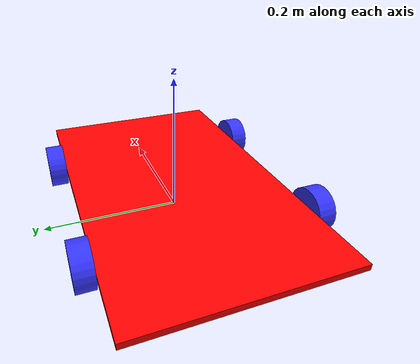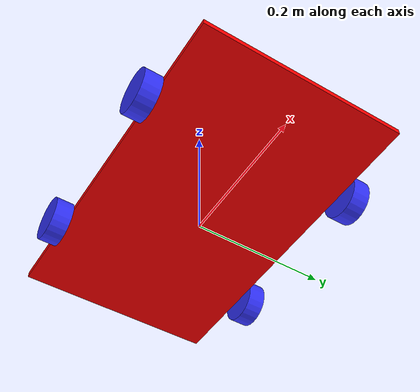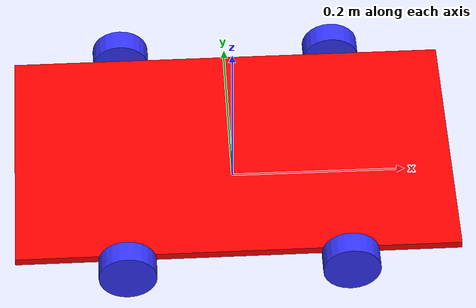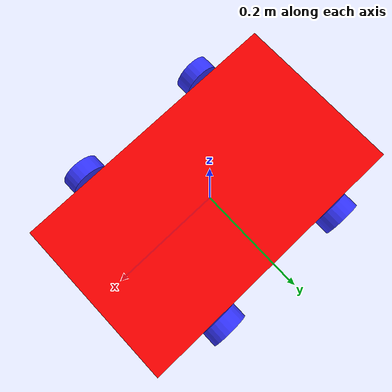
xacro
<?xml version="1.0"?>
<robot xmlns:xacro="http://www.ros.org/wiki/xacro" >

    <xacro:include filename="inertial_macros.xacro"/>

    <xacro:property name="base_length" value="0.5"/>
    <xacro:property name="base_width" value="0.3"/>
    <xacro:property name="base_height" value="0.009"/>
    <xacro:property name="wheel_radius" value="0.0325"/>
    <xacro:property name="wheel_length" value="0.026"/>
    <xacro:property name="wheel_offset_x" value="0.22"/>
    <xacro:property name="wheel_offset_y" value="0.312"/>
    <xacro:property name="wheel_offset_z" value="0.0125"/>

    <material name="white">
        <color rgba="1 1 1 1" />
    </material>

    <material name="orange">
        <color rgba="1 0.3 0.1 1"/>
    </material>

    <material name="blue">
        <color rgba="0.2 0.2 1 1"/>
    </material>

    <material name="black">
        <color rgba="0 0 0 1"/>
    </material>

    <material name="red">
        <color rgba="1 0 0 1"/>
    </material>

    <!-- BASE_FOOTPRINT LINK -->
    <link name="base_footprint">
    </link>

    <!-- BASE LINK -->

    <link name="base_link">
        <visual>
            <geometry>
                <box size="${base_length} ${base_width} ${base_height}" />
            </geometry>
            <origin xyz="0 0 ${base_height / 2.0}" rpy="0 0 0" />
            <material name="red" />
        </visual>
        <collision>
            <geometry>
                <box size="${base_length} ${base_width} ${base_height}" />
            </geometry>
            <origin xyz="0 0 ${base_height / 2.0}" rpy="0 0 0" />
        </collision>
        <xacro:box_inertia m="5.0" l="${2*base_length}" w="${2*base_width}" h="${2*base_height}"
                           xyz="0 0 ${base_height / 2.0}" rpy="0 0 0" />
    </link>

    <gazebo reference="base_link">
        <material>Gazebo/Orange</material>
    </gazebo>

    <joint name="base_joint" type="fixed">
        <parent link="base_footprint" />
        <child link="base_link" />
        <origin xyz="0 0 ${wheel_radius}" rpy="0 0 0"/>
    </joint>

    <!-- wheel LINK -->

    <xacro:macro name="wheel" params="prefix">
        <link name="${prefix}_wheel">
            <visual>
                <geometry>
                    <cylinder radius="${wheel_radius}" length="${wheel_length}" />
                </geometry>
                <origin xyz="0 0 0" rpy="${pi / 2.0} 0 0" />
                <material name="blue" />
            </visual>
            <collision>
                <geometry>
                    <cylinder radius="${wheel_radius}" length="${wheel_length}" />
                </geometry>
                <origin xyz="0 0 0" rpy="${pi / 2.0} 0 0" />
            </collision>
            <xacro:cylinder_inertia m="1.0"  r="${wheel_radius}" h="${wheel_length}"
                                        xyz="0 0 0" rpy="${pi / 2.0} 0 0"/>
        </link>
    </xacro:macro>

    <!-- FRONT_LEFT WHEEL LINK -->
    <xacro:wheel prefix="front_left" />

    <gazebo reference="front_left_wheel">
        <material>Gazebo/Blue</material>
    </gazebo>

    <joint name="front_left_wheel_joint" type="continuous">
        <parent link="base_link"/>
        <child link="front_left_wheel"/>
        <origin xyz="${base_length / 4.0} ${(base_width + wheel_length) / 2.0} 0" rpy="0 0 0" />
        <axis xyz="0 1 0"/>
    </joint>

        <!-- Transmission for rear_left_wheel -->
    <transmission name="front_left_wheel_trans">
    <type>transmission_interface/SimpleTransmission</type>
    <joint name="front_left_wheel_joint">
        <hardwareInterface>hardware_interface/VelocityJointInterface</hardwareInterface>
    </joint>
    <actuator name="front_left_motor">
        <hardwareInterface>hardware_interface/VelocityJointInterface</hardwareInterface>
        <mechanicalReduction>1</mechanicalReduction>
    </actuator>
    </transmission>

    <!-- Gazebo plugin interface -->
    <gazebo>
    <plugin name="front_left_wheel_controller" filename="libgazebo_ros_joint_control.so"/>
    </gazebo>

    <!-- FRONT_RIGHT WHEEL LINK -->
    <xacro:wheel prefix="front_right" />

    <gazebo reference="front_right_wheel">
        <material>Gazebo/Blue</material>
    </gazebo>

    <joint name="front_right_wheel_joint" type="continuous">
        <parent link="base_link"/>
        <child link="front_right_wheel"/>
        <origin xyz="${base_length / 4.0} ${-(base_width + wheel_length) / 2.0} 0" rpy="0 0 0" />
        <axis xyz="0 1 0"/>
    </joint>

        <!-- Transmission for rear_left_wheel -->
    <transmission name="front_right_wheel_trans">
    <type>transmission_interface/SimpleTransmission</type>
    <joint name="front_right_wheel_joint">
        <hardwareInterface>hardware_interface/VelocityJointInterface</hardwareInterface>
    </joint>
    <actuator name="front_right_motor">
        <hardwareInterface>hardware_interface/VelocityJointInterface</hardwareInterface>
        <mechanicalReduction>1</mechanicalReduction>
    </actuator>
    </transmission>

    <!-- Gazebo plugin interface -->
    <gazebo>
    <plugin name="front_right_wheel_controller" filename="libgazebo_ros_joint_control.so"/>
    </gazebo>

    <!-- REAR_LEFT WHEEL LINK -->
    <xacro:wheel prefix="rear_left" />

    <gazebo reference="rear_left_wheel">
        <material>Gazebo/Blue</material>
    </gazebo>

    <joint name="rear_left_wheel_joint" type="continuous">
        <parent link="base_link"/>
        <child link="rear_left_wheel"/>
        <origin xyz="${-base_length / 4.0} ${(base_width + wheel_length) / 2.0} 0" rpy="0 0 0" />
        <axis xyz="0 1 0"/>
    </joint>

    <!-- Transmission for rear_left_wheel -->
    <transmission name="rear_left_wheel_trans">
    <type>transmission_interface/SimpleTransmission</type>
    <joint name="rear_left_wheel_joint">
        <hardwareInterface>hardware_interface/VelocityJointInterface</hardwareInterface>
    </joint>
    <actuator name="rear_left_motor">
        <hardwareInterface>hardware_interface/VelocityJointInterface</hardwareInterface>
        <mechanicalReduction>1</mechanicalReduction>
    </actuator>
    </transmission>

    <!-- Gazebo plugin interface -->
    <gazebo>
    <plugin name="rear_left_wheel_controller" filename="libgazebo_ros_joint_control.so"/>
    </gazebo>

    <!-- REAR_RIGHT WHEEL LINK -->
   <xacro:wheel prefix="rear_right" />

    <gazebo reference="rear_right_wheel">
        <material>Gazebo/Blue</material>
    </gazebo>

    <joint name="rear_right_wheel_joint" type="continuous">
        <parent link="base_link"/>
        <child link="rear_right_wheel"/>
        <origin xyz="${-base_length / 4.0} ${-(base_width + wheel_length) / 2.0} 0" rpy="0 0 0" />
        <axis xyz="0 1 0"/>
    </joint>

        <!-- Transmission for rear_left_wheel -->
    <transmission name="rear_right_wheel_trans">
    <type>transmission_interface/SimpleTransmission</type>
    <joint name="rear_right_wheel_joint">
        <hardwareInterface>hardware_interface/VelocityJointInterface</hardwareInterface>
    </joint>
    <actuator name="rear_right_motor">
        <hardwareInterface>hardware_interface/VelocityJointInterface</hardwareInterface>
        <mechanicalReduction>1</mechanicalReduction>
    </actuator>
    </transmission>

    <!-- Gazebo plugin interface -->
    <gazebo>
    <plugin name="rear_right_wheel_controller" filename="libgazebo_ros_joint_control.so"/>
    </gazebo>

</robot>

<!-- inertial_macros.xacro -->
<robot xmlns:xacro="http://www.ros.org/wiki/xacro" >

    <!-- Specify some standard inertial calculations https://en.wikipedia.org/wiki/List_of_moments_of_inertia -->
    <!-- These make use of xacro's mathematical functionality -->

   <xacro:macro name="box_inertia" params="m l w h xyz rpy">
        <inertial>
            <origin xyz="${xyz}" rpy="${rpy}" />
            <mass value="${m}" />
            <inertia ixx="${(m/12) * (h*h + l*l)}" ixy="0" ixz="0"
                     iyy="${(m/12) * (w*w + l*l)}" iyz="0"
                     izz="${(m/12) * (w*w + h*h)}" />
        </inertial>
    </xacro:macro>

    <xacro:macro name="cylinder_inertia" params="m r h xyz rpy">
        <inertial>
            <origin xyz="${xyz}" rpy="${rpy}" />
            <mass value="${m}" />
            <inertia ixx="${(m/12) * (3*r*r + h*h)}" ixy="0" ixz="0"
                     iyy="${(m/12) * (3*r*r + h*h)}" iyz="0"
                     izz="${(m/2) * (r*r)}" />
        </inertial>
    </xacro:macro>

</robot>
